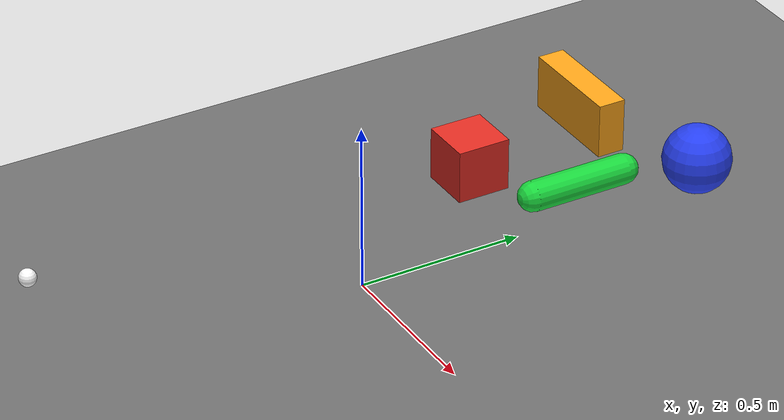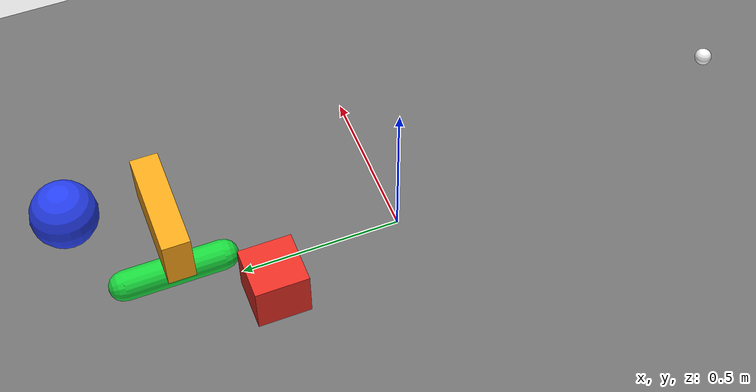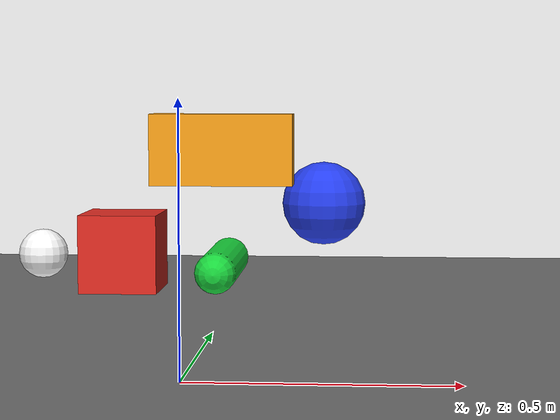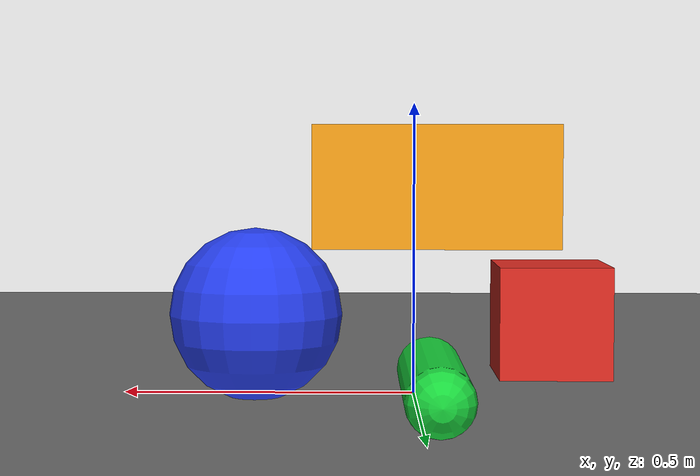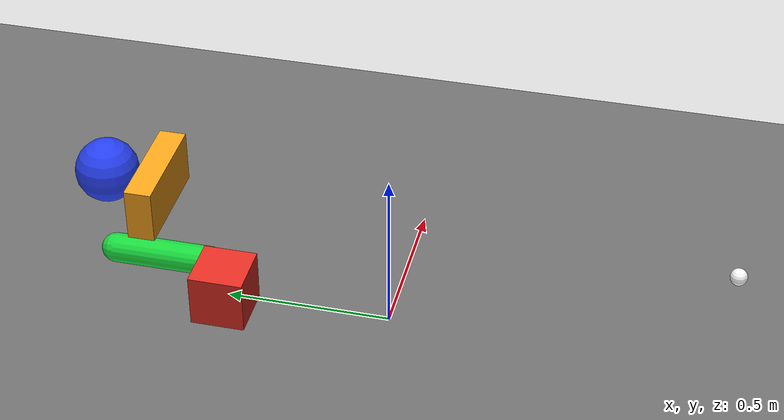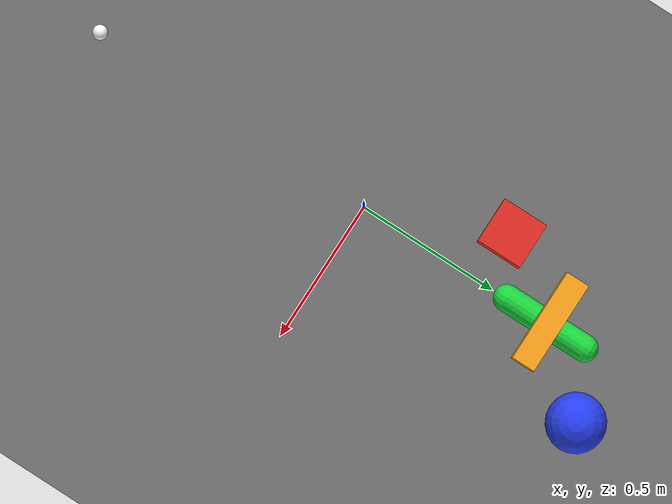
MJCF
<mujoco model="stereo_endoscope_test">
  <compiler angle="degree"/>
  <option timestep="0.002" gravity="0 0 -9.81"/>

  <visual>
    <quality shadowsize="2048"/>
    <map znear="0.01" zfar="20"/>
    <global offwidth="1440" offheight="1600"/>
  </visual>

  <asset>
    <texture name="grid" type="2d" builtin="checker"
             width="512" height="512"
             rgb1="0.18 0.18 0.18"
             rgb2="0.70 0.70 0.70"/>
    <material name="gridmat" texture="grid" texrepeat="8 8" reflectance="0.1"/>
  </asset>

  <worldbody>
    <light name="key" pos="0 -1 3" dir="0 0 -1" diffuse="0.9 0.9 0.9"/>
    <light name="fill" pos="-1 -1 1.5" dir="1 1 -1" diffuse="0.3 0.3 0.3"/>

    <geom name="floor" type="plane" pos="0 0 0" size="3 3 0.01" material="gridmat"/>

    <geom name="near_red_box" type="box" pos="-0.18 0.45 0.18" size="0.08 0.08 0.08"
          rgba="0.9 0.18 0.14 1"/>
    <geom name="far_blue_sphere" type="sphere" pos="0.22 0.95 0.24" size="0.10"
          rgba="0.15 0.25 0.95 1"/>
    <geom name="center_green_capsule" type="capsule" fromto="0.0 0.55 0.12  0.0 0.85 0.12"
          size="0.045" rgba="0.10 0.85 0.24 1"/>

    <body name="spinning_box" pos="0 0.70 0.38">
      <joint name="spin" type="hinge" axis="0 0 1" damping="0.1"/>
      <geom type="box" size="0.16 0.04 0.08" rgba="1.0 0.65 0.10 1"/>
    </body>

    <!--
      Camera looks along local -Z. xyaxes sets image +X and image +Y.
      Here local -Z points roughly world +Y, so the cameras look from y=-1
      toward the scene.
    -->
    <body name="endoscope_tip" pos="0 -1.0 0.35">
      <geom name="tip_marker" type="sphere" size="0.025" rgba="1 1 1 1"/>

      <camera name="endo_left"
              pos="-0.0003 0 0"
              xyaxes="1 0 0  0 0 1"
              fovy="55"/>

      <camera name="endo_right"
              pos="0.0003 0 0"
              xyaxes="1 0 0  0 0 1"
              fovy="55"/>
    </body>
  </worldbody>
</mujoco>
